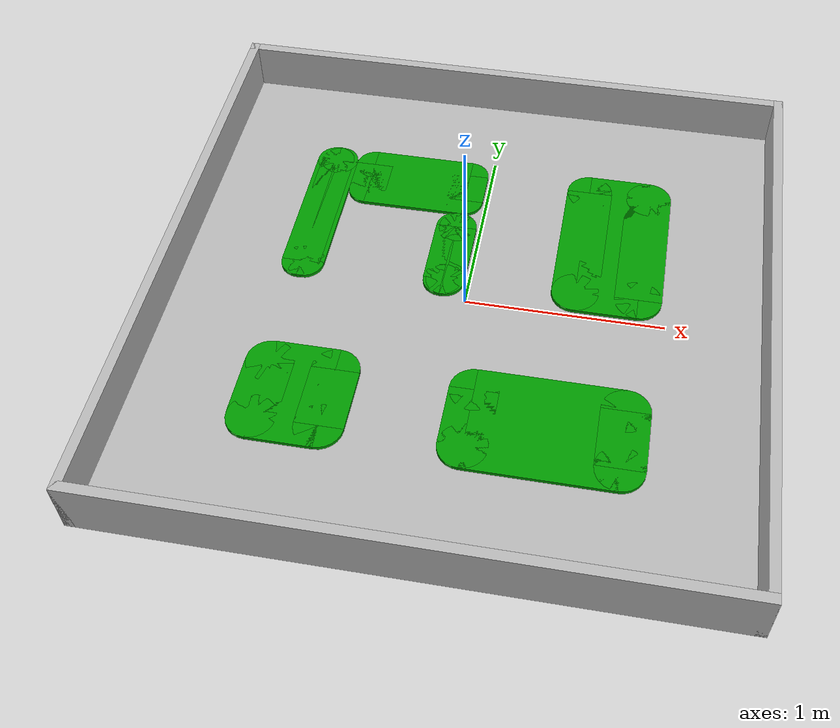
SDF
<?xml version="1.0" ?>
<sdf version="1.5">
  <model name="simulation_table_with_obstacles">
    <static>true</static>
    <link name="floor">
      <collision name="collision">
        <geometry>
          <plane>
            <normal>0 0 1</normal>
            <size>3.0 3.0</size>
          </plane>
        </geometry>
        <surface>
          <friction>
            <ode>
              <mu>100</mu>
              <mu2>50</mu2>
            </ode>
          </friction>
        </surface>
      </collision>
      <visual name="visual">
        <cast_shadows>false</cast_shadows>
        <geometry>
          <plane>
            <normal>0 0 1</normal>
            <size>3.0 3.0</size>
          </plane>
        </geometry>
        <material>
          <script>
            <uri>model://simulation_table_with_obstacles/materials/scripts/</uri>
            <uri>model://simulation_table_with_obstacles/materials/textures/</uri>
            <name>SimulationTableWithObstacle/Background</name>
          </script>
        </material>
      </visual>
    </link>

    <!-- Ortak: visual z=0.01 (0.02 kalınlık), collision z=0.50 (1.00 yükseklik) -->
    <!-- Lidar için laser_retro=0.8, temas kuvvetini kapat: collide_without_contact=true -->

    <!-- =================== SOL-ÜST L: SOL KOL (r=0.10) =================== -->
    <!-- center=(-0.87150, 0.49789), size=(0.22180 x 0.96540) -->
    <!-- w_mid=0.02180, h_mid=0.76540, x_edge=0.01090, y_edge=0.38270 -->
    <link name="forbidden_tl_left">
      <laser_retro>0.8</laser_retro>
      <pose>-0.87150 0.49789 0 0 0 0</pose>

      <collision name="tl_left_c_mid">
        <pose>0 0 0.50 0 0 0</pose>
        <geometry><box><size>0.02180 0.96540 1.00</size></box></geometry>
        <surface><contact><collide_without_contact>true</collide_without_contact></contact></surface>
      </collision>
      <collision name="tl_left_c_left">
        <pose>-0.01090 0 0.50 0 0 0</pose>
        <geometry><box><size>0.20 0.76540 1.00</size></box></geometry>
        <surface><contact><collide_without_contact>true</collide_without_contact></contact></surface>
      </collision>
      <collision name="tl_left_c_right">
        <pose>0.01090 0 0.50 0 0 0</pose>
        <geometry><box><size>0.20 0.76540 1.00</size></box></geometry>
        <surface><contact><collide_without_contact>true</collide_without_contact></contact></surface>
      </collision>
      <collision name="tl_left_c_ne">
        <pose>0.01090 0.38270 0.50 0 0 0</pose>
        <geometry><cylinder><radius>0.10</radius><length>1.00</length></cylinder></geometry>
        <surface><contact><collide_without_contact>true</collide_without_contact></contact></surface>
      </collision>
      <collision name="tl_left_c_nw">
        <pose>-0.01090 0.38270 0.50 0 0 0</pose>
        <geometry><cylinder><radius>0.10</radius><length>1.00</length></cylinder></geometry>
        <surface><contact><collide_without_contact>true</collide_without_contact></contact></surface>
      </collision>
      <collision name="tl_left_c_se">
        <pose>0.01090 -0.38270 0.50 0 0 0</pose>
        <geometry><cylinder><radius>0.10</radius><length>1.00</length></cylinder></geometry>
        <surface><contact><collide_without_contact>true</collide_without_contact></contact></surface>
      </collision>
      <collision name="tl_left_c_sw">
        <pose>-0.01090 -0.38270 0.50 0 0 0</pose>
        <geometry><cylinder><radius>0.10</radius><length>1.00</length></cylinder></geometry>
        <surface><contact><collide_without_contact>true</collide_without_contact></contact></surface>
      </collision>

      <visual name="tl_left_v_mid">
        <pose>0 0 0.01 0 0 0</pose>
        <geometry><box><size>0.02180 0.96540 0.02</size></box></geometry>
        <material><ambient>0 0.6 0 1</ambient><diffuse>0 0.6 0 1</diffuse></material>
      </visual>
      <visual name="tl_left_v_left">
        <pose>-0.01090 0 0.01 0 0 0</pose>
        <geometry><box><size>0.20 0.76540 0.02</size></box></geometry>
        <material><ambient>0 0.6 0 1</ambient><diffuse>0 0.6 0 1</diffuse></material>
      </visual>
      <visual name="tl_left_v_right">
        <pose>0.01090 0 0.01 0 0 0</pose>
        <geometry><box><size>0.20 0.76540 0.02</size></box></geometry>
        <material><ambient>0 0.6 0 1</ambient><diffuse>0 0.6 0 1</diffuse></material>
      </visual>
      <visual name="tl_left_v_ne">
        <pose>0.01090 0.38270 0.01 0 0 0</pose>
        <geometry><cylinder><radius>0.10</radius><length>0.02</length></cylinder></geometry>
        <material><ambient>0 0.6 0 1</ambient><diffuse>0 0.6 0 1</diffuse></material>
      </visual>
      <visual name="tl_left_v_nw">
        <pose>-0.01090 0.38270 0.01 0 0 0</pose>
        <geometry><cylinder><radius>0.10</radius><length>0.02</length></cylinder></geometry>
        <material><ambient>0 0.6 0 1</ambient><diffuse>0 0.6 0 1</diffuse></material>
      </visual>
      <visual name="tl_left_v_se">
        <pose>0.01090 -0.38270 0.01 0 0 0</pose>
        <geometry><cylinder><radius>0.10</radius><length>0.02</length></cylinder></geometry>
        <material><ambient>0 0.6 0 1</ambient><diffuse>0 0.6 0 1</diffuse></material>
      </visual>
      <visual name="tl_left_v_sw">
        <pose>-0.01090 -0.38270 0.01 0 0 0</pose>
        <geometry><cylinder><radius>0.10</radius><length>0.02</length></cylinder></geometry>
        <material><ambient>0 0.6 0 1</ambient><diffuse>0 0.6 0 1</diffuse></material>
      </visual>
    </link>

    <!-- =================== SOL-ÜST L: ÜST KOL (r=0.10) =================== -->
    <!-- center=(-0.39266, 0.78405), size=(0.73588 x 0.39309) -->
    <!-- w_mid=0.53588, h_mid=0.19309, x_edge=0.26794, y_edge=0.09654 -->
    <link name="forbidden_tl_top">
      <laser_retro>0.8</laser_retro>
      <pose>-0.39266 0.78405 0 0 0 0</pose>

      <collision name="tl_top_c_mid">
        <pose>0 0 0.50 0 0 0</pose>
        <geometry><box><size>0.53588 0.39309 1.00</size></box></geometry>
        <surface><contact><collide_without_contact>true</collide_without_contact></contact></surface>
      </collision>
      <collision name="tl_top_c_left">
        <pose>-0.26794 0 0.50 0 0 0</pose>
        <geometry><box><size>0.20 0.19309 1.00</size></box></geometry>
        <surface><contact><collide_without_contact>true</collide_without_contact></contact></surface>
      </collision>
      <collision name="tl_top_c_right">
        <pose>0.26794 0 0.50 0 0 0</pose>
        <geometry><box><size>0.20 0.19309 1.00</size></box></geometry>
        <surface><contact><collide_without_contact>true</collide_without_contact></contact></surface>
      </collision>
      <collision name="tl_top_c_ne">
        <pose>0.26794 0.09654 0.50 0 0 0</pose>
        <geometry><cylinder><radius>0.10</radius><length>1.00</length></cylinder></geometry>
        <surface><contact><collide_without_contact>true</collide_without_contact></contact></surface>
      </collision>
      <collision name="tl_top_c_nw">
        <pose>-0.26794 0.09654 0.50 0 0 0</pose>
        <geometry><cylinder><radius>0.10</radius><length>1.00</length></cylinder></geometry>
        <surface><contact><collide_without_contact>true</collide_without_contact></contact></surface>
      </collision>
      <collision name="tl_top_c_se">
        <pose>0.26794 -0.09654 0.50 0 0 0</pose>
        <geometry><cylinder><radius>0.10</radius><length>1.00</length></cylinder></geometry>
        <surface><contact><collide_without_contact>true</collide_without_contact></contact></surface>
      </collision>
      <collision name="tl_top_c_sw">
        <pose>-0.26794 -0.09654 0.50 0 0 0</pose>
        <geometry><cylinder><radius>0.10</radius><length>1.00</length></cylinder></geometry>
        <surface><contact><collide_without_contact>true</collide_without_contact></contact></surface>
      </collision>

      <visual name="tl_top_v_mid">
        <pose>0 0 0.01 0 0 0</pose>
        <geometry><box><size>0.53588 0.39309 0.02</size></box></geometry>
        <material><ambient>0 0.6 0 1</ambient><diffuse>0 0.6 0 1</diffuse></material>
      </visual>
      <visual name="tl_top_v_left">
        <pose>-0.26794 0 0.01 0 0 0</pose>
        <geometry><box><size>0.20 0.19309 0.02</size></box></geometry>
        <material><ambient>0 0.6 0 1</ambient><diffuse>0 0.6 0 1</diffuse></material>
      </visual>
      <visual name="tl_top_v_right">
        <pose>0.26794 0 0.01 0 0 0</pose>
        <geometry><box><size>0.20 0.19309 0.02</size></box></geometry>
        <material><ambient>0 0.6 0 1</ambient><diffuse>0 0.6 0 1</diffuse></material>
      </visual>
      <visual name="tl_top_v_ne">
        <pose>0.26794 0.09654 0.01 0 0 0</pose>
        <geometry><cylinder><radius>0.10</radius><length>0.02</length></cylinder></geometry>
        <material><ambient>0 0.6 0 1</ambient><diffuse>0 0.6 0 1</diffuse></material>
      </visual>
      <visual name="tl_top_v_nw">
        <pose>-0.26794 0.09654 0.01 0 0 0</pose>
        <geometry><cylinder><radius>0.10</radius><length>0.02</length></cylinder></geometry>
        <material><ambient>0 0.6 0 1</ambient><diffuse>0 0.6 0 1</diffuse></material>
      </visual>
      <visual name="tl_top_v_se">
        <pose>0.26794 -0.09654 0.01 0 0 0</pose>
        <geometry><cylinder><radius>0.10</radius><length>0.02</length></cylinder></geometry>
        <material><ambient>0 0.6 0 1</ambient><diffuse>0 0.6 0 1</diffuse></material>
      </visual>
      <visual name="tl_top_v_sw">
        <pose>-0.26794 -0.09654 0.01 0 0 0</pose>
        <geometry><cylinder><radius>0.10</radius><length>0.02</length></cylinder></geometry>
        <material><ambient>0 0.6 0 1</ambient><diffuse>0 0.6 0 1</diffuse></material>
      </visual>
    </link>

    <!-- =================== SOL-ÜST L: SAĞ KOL (r=0.10) =================== -->
    <!-- center=(-0.13176, 0.30135), size=(0.21408 x 0.57231) -->
    <!-- w_mid=0.01408, h_mid=0.37231, x_edge=0.00704, y_edge=0.18615 -->
    <link name="forbidden_tl_right">
      <laser_retro>0.8</laser_retro>
      <pose>-0.13176 0.30135 0 0 0 0</pose>

      <collision name="tl_right_c_mid">
        <pose>0 0 0.50 0 0 0</pose>
        <geometry><box><size>0.01408 0.57231 1.00</size></box></geometry>
        <surface><contact><collide_without_contact>true</collide_without_contact></contact></surface>
      </collision>
      <collision name="tl_right_c_left">
        <pose>-0.00704 0 0.50 0 0 0</pose>
        <geometry><box><size>0.20 0.37231 1.00</size></box></geometry>
        <surface><contact><collide_without_contact>true</collide_without_contact></contact></surface>
      </collision>
      <collision name="tl_right_c_right">
        <pose>0.00704 0 0.50 0 0 0</pose>
        <geometry><box><size>0.20 0.37231 1.00</size></box></geometry>
        <surface><contact><collide_without_contact>true</collide_without_contact></contact></surface>
      </collision>
      <collision name="tl_right_c_ne">
        <pose>0.00704 0.18615 0.50 0 0 0</pose>
        <geometry><cylinder><radius>0.10</radius><length>1.00</length></cylinder></geometry>
        <surface><contact><collide_without_contact>true</collide_without_contact></contact></surface>
      </collision>
      <collision name="tl_right_c_nw">
        <pose>-0.00704 0.18615 0.50 0 0 0</pose>
        <geometry><cylinder><radius>0.10</radius><length>1.00</length></cylinder></geometry>
        <surface><contact><collide_without_contact>true</collide_without_contact></contact></surface>
      </collision>
      <collision name="tl_right_c_se">
        <pose>0.00704 -0.18615 0.50 0 0 0</pose>
        <geometry><cylinder><radius>0.10</radius><length>1.00</length></cylinder></geometry>
        <surface><contact><collide_without_contact>true</collide_without_contact></contact></surface>
      </collision>
      <collision name="tl_right_c_sw">
        <pose>-0.00704 -0.18615 0.50 0 0 0</pose>
        <geometry><cylinder><radius>0.10</radius><length>1.00</length></cylinder></geometry>
        <surface><contact><collide_without_contact>true</collide_without_contact></contact></surface>
      </collision>

      <visual name="tl_right_v_mid">
        <pose>0 0 0.01 0 0 0</pose>
        <geometry><box><size>0.01408 0.57231 0.02</size></box></geometry>
        <material><ambient>0 0.6 0 1</ambient><diffuse>0 0.6 0 1</diffuse></material>
      </visual>
      <visual name="tl_right_v_left">
        <pose>-0.00704 0 0.01 0 0 0</pose>
        <geometry><box><size>0.20 0.37231 0.02</size></box></geometry>
        <material><ambient>0 0.6 0 1</ambient><diffuse>0 0.6 0 1</diffuse></material>
      </visual>
      <visual name="tl_right_v_right">
        <pose>0.00704 0 0.01 0 0 0</pose>
        <geometry><box><size>0.20 0.37231 0.02</size></box></geometry>
        <material><ambient>0 0.6 0 1</ambient><diffuse>0 0.6 0 1</diffuse></material>
      </visual>
      <visual name="tl_right_v_ne">
        <pose>0.00704 0.18615 0.01 0 0 0</pose>
        <geometry><cylinder><radius>0.10</radius><length>0.02</length></cylinder></geometry>
        <material><ambient>0 0.6 0 1</ambient><diffuse>0 0.6 0 1</diffuse></material>
      </visual>
      <visual name="tl_right_v_nw">
        <pose>-0.00704 0.18615 0.01 0 0 0</pose>
        <geometry><cylinder><radius>0.10</radius><length>0.02</length></cylinder></geometry>
        <material><ambient>0 0.6 0 1</ambient><diffuse>0 0.6 0 1</diffuse></material>
      </visual>
      <visual name="tl_right_v_se">
        <pose>0.00704 -0.18615 0.01 0 0 0</pose>
        <geometry><cylinder><radius>0.10</radius><length>0.02</length></cylinder></geometry>
        <material><ambient>0 0.6 0 1</ambient><diffuse>0 0.6 0 1</diffuse></material>
      </visual>
      <visual name="tl_right_v_sw">
        <pose>-0.00704 -0.18615 0.01 0 0 0</pose>
        <geometry><cylinder><radius>0.10</radius><length>0.02</length></cylinder></geometry>
        <material><ambient>0 0.6 0 1</ambient><diffuse>0 0.6 0 1</diffuse></material>
      </visual>
    </link>

    <!-- =================== ÜST-SAĞ DİKDÖRTGEN (r=0.12) =================== -->
    <!-- W=0.55875, H=0.95848, r=0.12 -> w_mid=0.31875, h_mid=0.71848, x_edge=0.159375, y_edge=0.35924 -->
    <link name="forbidden_tr">
      <laser_retro>0.8</laser_retro>
      <pose>0.696965 0.501280 0 0 0 0</pose>

      <collision name="tr_c_mid">
        <pose>0 0 0.50 0 0 0</pose>
        <geometry><box><size>0.31875 0.95848 1.00</size></box></geometry>
        <surface><contact><collide_without_contact>true</collide_without_contact></contact></surface>
      </collision>
      <collision name="tr_c_left">
        <pose>-0.159375 0 0.50 0 0 0</pose>
        <geometry><box><size>0.24 0.71848 1.00</size></box></geometry>
        <surface><contact><collide_without_contact>true</collide_without_contact></contact></surface>
      </collision>
      <collision name="tr_c_right">
        <pose>0.159375 0 0.50 0 0 0</pose>
        <geometry><box><size>0.24 0.71848 1.00</size></box></geometry>
        <surface><contact><collide_without_contact>true</collide_without_contact></contact></surface>
      </collision>
      <collision name="tr_c_ne">
        <pose>0.159375 0.35924 0.50 0 0 0</pose>
        <geometry><cylinder><radius>0.12</radius><length>1.00</length></cylinder></geometry>
        <surface><contact><collide_without_contact>true</collide_without_contact></contact></surface>
      </collision>
      <collision name="tr_c_nw">
        <pose>-0.159375 0.35924 0.50 0 0 0</pose>
        <geometry><cylinder><radius>0.12</radius><length>1.00</length></cylinder></geometry>
        <surface><contact><collide_without_contact>true</collide_without_contact></contact></surface>
      </collision>
      <collision name="tr_c_se">
        <pose>0.159375 -0.35924 0.50 0 0 0</pose>
        <geometry><cylinder><radius>0.12</radius><length>1.00</length></cylinder></geometry>
        <surface><contact><collide_without_contact>true</collide_without_contact></contact></surface>
      </collision>
      <collision name="tr_c_sw">
        <pose>-0.159375 -0.35924 0.50 0 0 0</pose>
        <geometry><cylinder><radius>0.12</radius><length>1.00</length></cylinder></geometry>
        <surface><contact><collide_without_contact>true</collide_without_contact></contact></surface>
      </collision>

      <visual name="tr_v_mid">
        <pose>0 0 0.01 0 0 0</pose>
        <geometry><box><size>0.31875 0.95848 0.02</size></box></geometry>
        <material><ambient>0 0.6 0 1</ambient><diffuse>0 0.6 0 1</diffuse></material>
      </visual>
      <visual name="tr_v_left">
        <pose>-0.159375 0 0.01 0 0 0</pose>
        <geometry><box><size>0.24 0.71848 0.02</size></box></geometry>
        <material><ambient>0 0.6 0 1</ambient><diffuse>0 0.6 0 1</diffuse></material>
      </visual>
      <visual name="tr_v_right">
        <pose>0.159375 0 0.01 0 0 0</pose>
        <geometry><box><size>0.24 0.71848 0.02</size></box></geometry>
        <material><ambient>0 0.6 0 1</ambient><diffuse>0 0.6 0 1</diffuse></material>
      </visual>
      <visual name="tr_v_ne">
        <pose>0.159375 0.35924 0.01 0 0 0</pose>
        <geometry><cylinder><radius>0.12</radius><length>0.02</length></cylinder></geometry>
        <material><ambient>0 0.6 0 1</ambient><diffuse>0 0.6 0 1</diffuse></material>
      </visual>
      <visual name="tr_v_nw">
        <pose>-0.159375 0.35924 0.01 0 0 0</pose>
        <geometry><cylinder><radius>0.12</radius><length>0.02</length></cylinder></geometry>
        <material><ambient>0 0.6 0 1</ambient><diffuse>0 0.6 0 1</diffuse></material>
      </visual>
      <visual name="tr_v_se">
        <pose>0.159375 -0.35924 0.01 0 0 0</pose>
        <geometry><cylinder><radius>0.12</radius><length>0.02</length></cylinder></geometry>
        <material><ambient>0 0.6 0 1</ambient><diffuse>0 0.6 0 1</diffuse></material>
      </visual>
      <visual name="tr_v_sw">
        <pose>-0.159375 -0.35924 0.01 0 0 0</pose>
        <geometry><cylinder><radius>0.12</radius><length>0.02</length></cylinder></geometry>
        <material><ambient>0 0.6 0 1</ambient><diffuse>0 0.6 0 1</diffuse></material>
      </visual>
    </link>

    <!-- =================== ALT-SOL DİKDÖRTGEN (r=0.12) =================== -->
    <!-- W=0.56372, H=0.56689, r=0.12 -> w_mid=0.32372, h_mid=0.32689, x_edge=0.16186, y_edge=0.163445 -->
    <link name="forbidden_bl">
      <laser_retro>0.8</laser_retro>
      <pose>-0.699490 -0.703075 0 0 0 0</pose>

      <collision name="bl_c_mid">
        <pose>0 0 0.50 0 0 0</pose>
        <geometry><box><size>0.32372 0.56689 1.00</size></box></geometry>
        <surface><contact><collide_without_contact>true</collide_without_contact></contact></surface>
      </collision>
      <collision name="bl_c_left">
        <pose>-0.16186 0 0.50 0 0 0</pose>
        <geometry><box><size>0.24 0.32689 1.00</size></box></geometry>
        <surface><contact><collide_without_contact>true</collide_without_contact></contact></surface>
      </collision>
      <collision name="bl_c_right">
        <pose>0.16186 0 0.50 0 0 0</pose>
        <geometry><box><size>0.24 0.32689 1.00</size></box></geometry>
        <surface><contact><collide_without_contact>true</collide_without_contact></contact></surface>
      </collision>
      <collision name="bl_c_ne">
        <pose>0.16186 0.163445 0.50 0 0 0</pose>
        <geometry><cylinder><radius>0.12</radius><length>1.00</length></cylinder></geometry>
        <surface><contact><collide_without_contact>true</collide_without_contact></contact></surface>
      </collision>
      <collision name="bl_c_nw">
        <pose>-0.16186 0.163445 0.50 0 0 0</pose>
        <geometry><cylinder><radius>0.12</radius><length>1.00</length></cylinder></geometry>
        <surface><contact><collide_without_contact>true</collide_without_contact></contact></surface>
      </collision>
      <collision name="bl_c_se">
        <pose>0.16186 -0.163445 0.50 0 0 0</pose>
        <geometry><cylinder><radius>0.12</radius><length>1.00</length></cylinder></geometry>
        <surface><contact><collide_without_contact>true</collide_without_contact></contact></surface>
      </collision>
      <collision name="bl_c_sw">
        <pose>-0.16186 -0.163445 0.50 0 0 0</pose>
        <geometry><cylinder><radius>0.12</radius><length>1.00</length></cylinder></geometry>
        <surface><contact><collide_without_contact>true</collide_without_contact></contact></surface>
      </collision>

      <visual name="bl_v_mid">
        <pose>0 0 0.01 0 0 0</pose>
        <geometry><box><size>0.32372 0.56689 0.02</size></box></geometry>
        <material><ambient>0 0.6 0 1</ambient><diffuse>0 0.6 0 1</diffuse></material>
      </visual>
      <visual name="bl_v_left">
        <pose>-0.16186 0 0.01 0 0 0</pose>
        <geometry><box><size>0.24 0.32689 0.02</size></box></geometry>
        <material><ambient>0 0.6 0 1</ambient><diffuse>0 0.6 0 1</diffuse></material>
      </visual>
      <visual name="bl_v_right">
        <pose>0.16186 0 0.01 0 0 0</pose>
        <geometry><box><size>0.24 0.32689 0.02</size></box></geometry>
        <material><ambient>0 0.6 0 1</ambient><diffuse>0 0.6 0 1</diffuse></material>
      </visual>
      <visual name="bl_v_ne">
        <pose>0.16186 0.163445 0.01 0 0 0</pose>
        <geometry><cylinder><radius>0.12</radius><length>0.02</length></cylinder></geometry>
        <material><ambient>0 0.6 0 1</ambient><diffuse>0 0.6 0 1</diffuse></material>
      </visual>
      <visual name="bl_v_nw">
        <pose>-0.16186 0.163445 0.01 0 0 0</pose>
        <geometry><cylinder><radius>0.12</radius><length>0.02</length></cylinder></geometry>
        <material><ambient>0 0.6 0 1</ambient><diffuse>0 0.6 0 1</diffuse></material>
      </visual>
      <visual name="bl_v_se">
        <pose>0.16186 -0.163445 0.01 0 0 0</pose>
        <geometry><cylinder><radius>0.12</radius><length>0.02</length></cylinder></geometry>
        <material><ambient>0 0.6 0 1</ambient><diffuse>0 0.6 0 1</diffuse></material>
      </visual>
      <visual name="bl_v_sw">
        <pose>-0.16186 -0.163445 0.01 0 0 0</pose>
        <geometry><cylinder><radius>0.12</radius><length>0.02</length></cylinder></geometry>
        <material><ambient>0 0.6 0 1</ambient><diffuse>0 0.6 0 1</diffuse></material>
      </visual>
    </link>

    <!-- =================== ALT-SAĞ DİKDÖRTGEN (r=0.12) =================== -->
    <!-- W=0.95848, H=0.55875, r=0.12 -> w_mid=0.71848, h_mid=0.31875, x_edge=0.35924, y_edge=0.159375 -->
    <link name="forbidden_br">
      <laser_retro>0.8</laser_retro>
      <pose>0.495530 -0.701895 0 0 0 0</pose>

      <collision name="br_c_mid">
        <pose>0 0 0.50 0 0 0</pose>
        <geometry><box><size>0.71848 0.55875 1.00</size></box></geometry>
        <surface><contact><collide_without_contact>true</collide_without_contact></contact></surface>
      </collision>
      <collision name="br_c_left">
        <pose>-0.35924 0 0.50 0 0 0</pose>
        <geometry><box><size>0.24 0.31875 1.00</size></box></geometry>
        <surface><contact><collide_without_contact>true</collide_without_contact></contact></surface>
      </collision>
      <collision name="br_c_right">
        <pose>0.35924 0 0.50 0 0 0</pose>
        <geometry><box><size>0.24 0.31875 1.00</size></box></geometry>
        <surface><contact><collide_without_contact>true</collide_without_contact></contact></surface>
      </collision>
      <collision name="br_c_ne">
        <pose>0.35924 0.159375 0.50 0 0 0</pose>
        <geometry><cylinder><radius>0.12</radius><length>1.00</length></cylinder></geometry>
        <surface><contact><collide_without_contact>true</collide_without_contact></contact></surface>
      </collision>
      <collision name="br_c_nw">
        <pose>-0.35924 0.159375 0.50 0 0 0</pose>
        <geometry><cylinder><radius>0.12</radius><length>1.00</length></cylinder></geometry>
        <surface><contact><collide_without_contact>true</collide_without_contact></contact></surface>
      </collision>
      <collision name="br_c_se">
        <pose>0.35924 -0.159375 0.50 0 0 0</pose>
        <geometry><cylinder><radius>0.12</radius><length>1.00</length></cylinder></geometry>
        <surface><contact><collide_without_contact>true</collide_without_contact></contact></surface>
      </collision>
      <collision name="br_c_sw">
        <pose>-0.35924 -0.159375 0.50 0 0 0</pose>
        <geometry><cylinder><radius>0.12</radius><length>1.00</length></cylinder></geometry>
        <surface><contact><collide_without_contact>true</collide_without_contact></contact></surface>
      </collision>

      <visual name="br_v_mid">
        <pose>0 0 0.01 0 0 0</pose>
        <geometry><box><size>0.71848 0.55875 0.02</size></box></geometry>
        <material><ambient>0 0.6 0 1</ambient><diffuse>0 0.6 0 1</diffuse></material>
      </visual>
      <visual name="br_v_left">
        <pose>-0.35924 0 0.01 0 0 0</pose>
        <geometry><box><size>0.24 0.31875 0.02</size></box></geometry>
        <material><ambient>0 0.6 0 1</ambient><diffuse>0 0.6 0 1</diffuse></material>
      </visual>
      <visual name="br_v_right">
        <pose>0.35924 0 0.01 0 0 0</pose>
        <geometry><box><size>0.24 0.31875 0.02</size></box></geometry>
        <material><ambient>0 0.6 0 1</ambient><diffuse>0 0.6 0 1</diffuse></material>
      </visual>
      <visual name="br_v_ne">
        <pose>0.35924 0.159375 0.01 0 0 0</pose>
        <geometry><cylinder><radius>0.12</radius><length>0.02</length></cylinder></geometry>
        <material><ambient>0 0.6 0 1</ambient><diffuse>0 0.6 0 1</diffuse></material>
      </visual>
      <visual name="br_v_nw">
        <pose>-0.35924 0.159375 0.01 0 0 0</pose>
        <geometry><cylinder><radius>0.12</radius><length>0.02</length></cylinder></geometry>
        <material><ambient>0 0.6 0 1</ambient><diffuse>0 0.6 0 1</diffuse></material>
      </visual>
      <visual name="br_v_se">
        <pose>0.35924 -0.159375 0.01 0 0 0</pose>
        <geometry><cylinder><radius>0.12</radius><length>0.02</length></cylinder></geometry>
        <material><ambient>0 0.6 0 1</ambient><diffuse>0 0.6 0 1</diffuse></material>
      </visual>
      <visual name="br_v_sw">
        <pose>-0.35924 -0.159375 0.01 0 0 0</pose>
        <geometry><cylinder><radius>0.12</radius><length>0.02</length></cylinder></geometry>
        <material><ambient>0 0.6 0 1</ambient><diffuse>0 0.6 0 1</diffuse></material>
      </visual>
    </link>

    <link name="side_1">
      <pose relative_to="floor">0.0 1.5 0.1 1.57079632679 0 0</pose>
      <collision name="collision">
        <geometry>
          <box>
            <size>3.05 0.3 0.05</size>
          </box>
        </geometry>
        <surface>
          <friction>
            <ode>
              <mu>100</mu>
              <mu2>50</mu2>
            </ode>
          </friction>
        </surface>
      </collision>
      <visual name="visual">
        <cast_shadows>false</cast_shadows>
        <geometry>
          <box>
            <size>3.05 0.3 0.05</size>
          </box>
        </geometry>
      </visual>
    </link>
    <link name="side_2">
      <pose relative_to="floor">0.0 -1.5 0.1 1.57079632679 0 0</pose>
      <collision name="collision">
        <geometry>
          <box>
            <size>3.05 0.3 0.05</size>
          </box>
        </geometry>
        <surface>
          <friction>
            <ode>
              <mu>100</mu>
              <mu2>50</mu2>
            </ode>
          </friction>
        </surface>
      </collision>
      <visual name="visual">
        <cast_shadows>false</cast_shadows>
        <geometry>
          <box>
            <size>3.05 0.3 0.05</size>
          </box>
        </geometry>
      </visual>
    </link>
    <link name="side_3">
      <pose relative_to="floor">1.5 0.0 0.1 1.57079632679 0 1.57079632679</pose>
      <collision name="collision">
        <geometry>
          <box>
            <size>3.05 0.3 0.05</size>
          </box>
        </geometry>
        <surface>
          <friction>
            <ode>
              <mu>100</mu>
              <mu2>50</mu2>
            </ode>
          </friction>
        </surface>
      </collision>
      <visual name="visual">
        <cast_shadows>false</cast_shadows>
        <geometry>
          <box>
            <size>3.05 0.3 0.05</size>
          </box>
        </geometry>
      </visual>
    </link>
    <link name="side_4">
      <pose relative_to="floor">-1.5 0.0 0.1 1.57079632679 0 1.57079632679</pose>
      <collision name="collision">
        <geometry>
          <box>
            <size>3.05 0.3 0.05</size>
          </box>
        </geometry>
        <surface>
          <friction>
            <ode>
              <mu>100</mu>
              <mu2>50</mu2>
            </ode>
          </friction>
        </surface>
      </collision>
      <visual name="visual">
        <cast_shadows>false</cast_shadows>
        <geometry>
          <box>
            <size>3.05 0.3 0.05</size>
          </box>
        </geometry>
      </visual>
    </link>
  </model>
</sdf>
